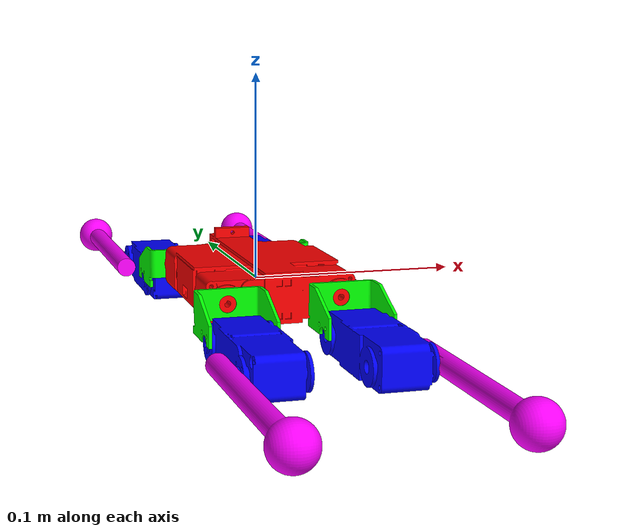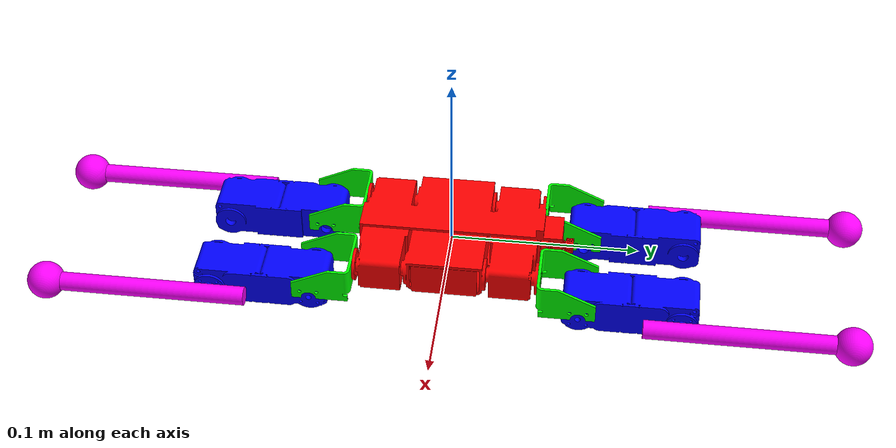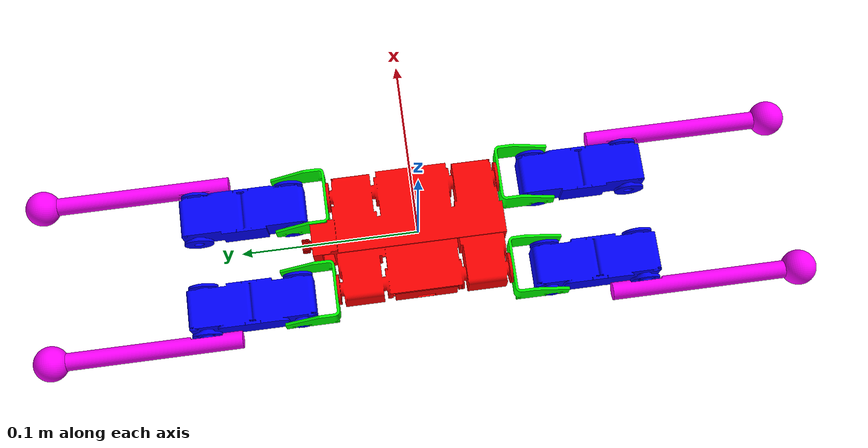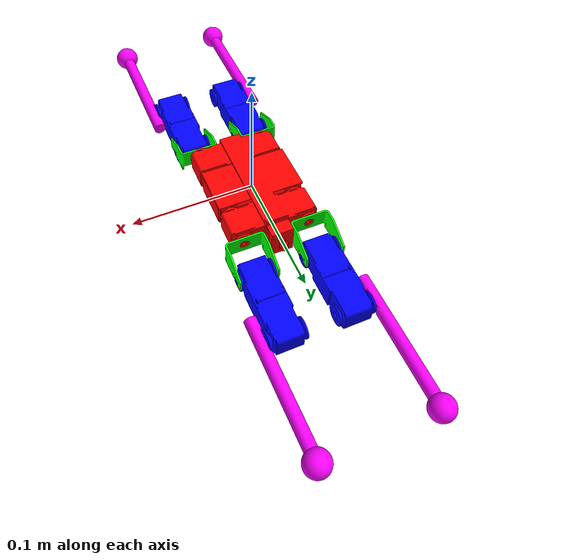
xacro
<?xml version="1.0"?>
<robot name="quarobo" xmlns:xacro="http://ros.org/wiki/xacro">

    <xacro:include filename="$(find quarobo_description)/urdf/leg/leg.urdf.xacro"/>

    <link name="base_link"/>

        <!-- === body === -->
    <joint name="body_joint" type='fixed'>
        <parent link="base_link"/>
        <child link="body_link"/>
    </joint>

    <link name="body_link">
        <visual>
            <geometry>
                <mesh filename="package://quarobo_description/meshes/origin_ros_quarobo_stlFiles/body.stl"/>
            </geometry>
            <origin xyz="0 0 0" rpy="0 0 0"/>
            <material name="red"/>
        </visual>
    </link>

    <!-- === Front right === -->
    <xacro:leg_macro prefix="FRS" parent="body_link" mesh="front_Shoulder_R.stl" color="green">
        <axis xyz="0 1 0"/>
        <origin xyz="-0.027 -0.04905 -0.00075" rpy="0 0 0"/>
    </xacro:leg_macro>

    <xacro:leg_macro prefix="FRL" parent="FRS_link" mesh="front_Leg_R.stl" color="blue">
        <axis xyz="1 0 0"/>
        <origin xyz="0 -0.022304 -0.01230" rpy="0 0 0"/>
    </xacro:leg_macro>

    <xacro:leg_macro prefix="FRF" parent="FRL_link" mesh="front_Foot_R.stl" color="purple">
        <axis xyz="1 0 0"/>
        <origin xyz="-0.015546 -0.054 0" rpy="0 0 0"/>
    </xacro:leg_macro>

    <!-- === Front left === -->
    <xacro:leg_macro prefix="FLS" parent="body_link" mesh="front_Shoulder_L.stl" color="green">
        <axis xyz="0 1 0"/>
        <origin xyz="0.027 -0.04905 -0.00075" rpy="0 0 0"/>
    </xacro:leg_macro>

    <xacro:leg_macro prefix="FLL" parent="FLS_link" mesh="front_Leg_L.stl" color="blue">
        <axis xyz="1 0 0"/>
        <origin xyz="0 -0.022304 -0.01230" rpy="0 0 0"/>
    </xacro:leg_macro>

    <xacro:leg_macro prefix="FLF" parent="FLL_link" mesh="front_Foot_L.stl" color="purple">
        <axis xyz="1 0 0"/>
        <origin xyz="0.015546 -0.054 0" rpy="0 0 0"/>
    </xacro:leg_macro>

    <!-- === Rear right === -->
    <xacro:leg_macro prefix="RRS" parent="body_link" mesh="rear_Shoulder_R.stl" color="green">
        <axis xyz="0 1 0"/>
        <origin xyz="-0.027 0.04905 -0.00075" rpy="0 0 0"/>
    </xacro:leg_macro>

    <xacro:leg_macro prefix="RRL" parent="RRS_link" mesh="rear_Leg_R.stl" color="blue">
        <axis xyz="1 0 0"/>
        <origin xyz="0 0.022304 -0.01230" rpy="0 0 0"/>
    </xacro:leg_macro>

    <xacro:leg_macro prefix="RRF" parent="RRL_link" mesh="rear_Foot_R.stl" color="purple">
        <axis xyz="1 0 0"/>
        <origin xyz="-0.015546 0.054 0" rpy="0 0 0"/>
    </xacro:leg_macro>

    <!-- === Rear left === -->
    <xacro:leg_macro prefix="RLS" parent="body_link" mesh="rear_Shoulder_L.stl" color="green">
        <axis xyz="0 1 0"/>
        <origin xyz="0.027 0.04905 -0.00075" rpy="0 0 0"/>
    </xacro:leg_macro>

    <xacro:leg_macro prefix="RLL" parent="RLS_link" mesh="rear_Leg_L.stl" color="blue">
        <axis xyz="1 0 0"/>
        <origin xyz="0 0.022304 -0.01230" rpy="0 0 0"/>
    </xacro:leg_macro>

    <xacro:leg_macro prefix="RLF" parent="RLL_link" mesh="rear_Foot_L.stl" color="purple">
        <axis xyz="1 0 0"/>
        <origin xyz="0.015546 0.054 0" rpy="0 0 0"/>
    </xacro:leg_macro>

</robot>

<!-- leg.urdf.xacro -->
<robot xmlns:xacro="http://ros.org/wiki/xacro">

    <xacro:include filename="$(find quarobo_description)/urdf/material/material.urdf.xacro"/>

    <xacro:macro name="leg_macro" params="prefix parent mesh color *joint_axis *joint_origin">

        <joint name="${prefix}_joint" type="revolute">
            <parent link="${parent}"/>
            <child link="${prefix}_link"/>
            <xacro:insert_block name="joint_axis"/>
            <xacro:insert_block name="joint_origin"/>
            <limit lower="-1.5" upper="1.5" effort="1000" velocity="0.5"/>
        </joint>

        <link name="${prefix}_link">
            <visual>
                <geometry>
                    <mesh filename="package://quarobo_description/meshes/origin_ros_quarobo_stlFiles/${mesh}"/>
                </geometry>
                <origin xyz="0 0 0" rpy="0 0 0"/>
                <material name="${color}"/>
            </visual>
        </link>

    </xacro:macro>

</robot>

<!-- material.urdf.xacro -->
<robot xmlns:xacro="http://ros.org/wiki/xacro">

    <material name="white">
        <color rgba="1.0 1.0 1.0 2.0"/>
    </material>
    <material name="red">
        <color rgba="1.0 0.0 0.0 2.0"/>
    </material>
    <material name="green">
        <color rgba="0.0 1.0 0.0 2.0"/>
    </material>
    <material name="blue">
        <color rgba="0.0 0.0 1.0 2.0"/>
    </material>
    <material name="purple">
        <color rgba="1.0 0.0 1.0 2.0"/>
    </material>

</robot>
